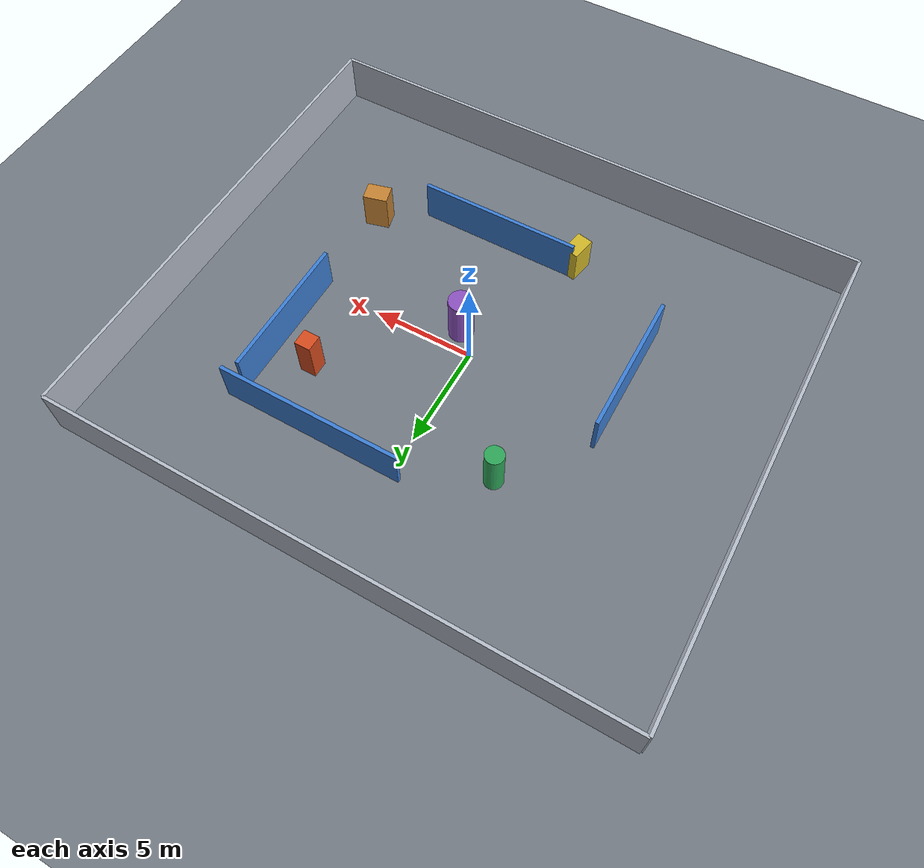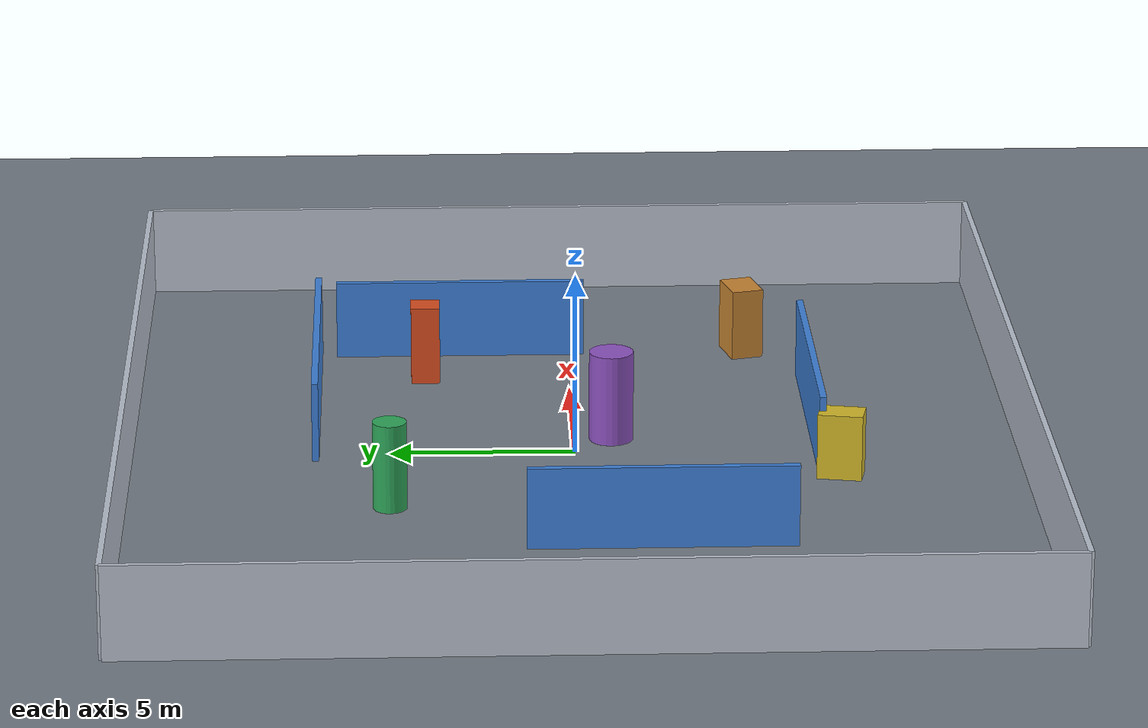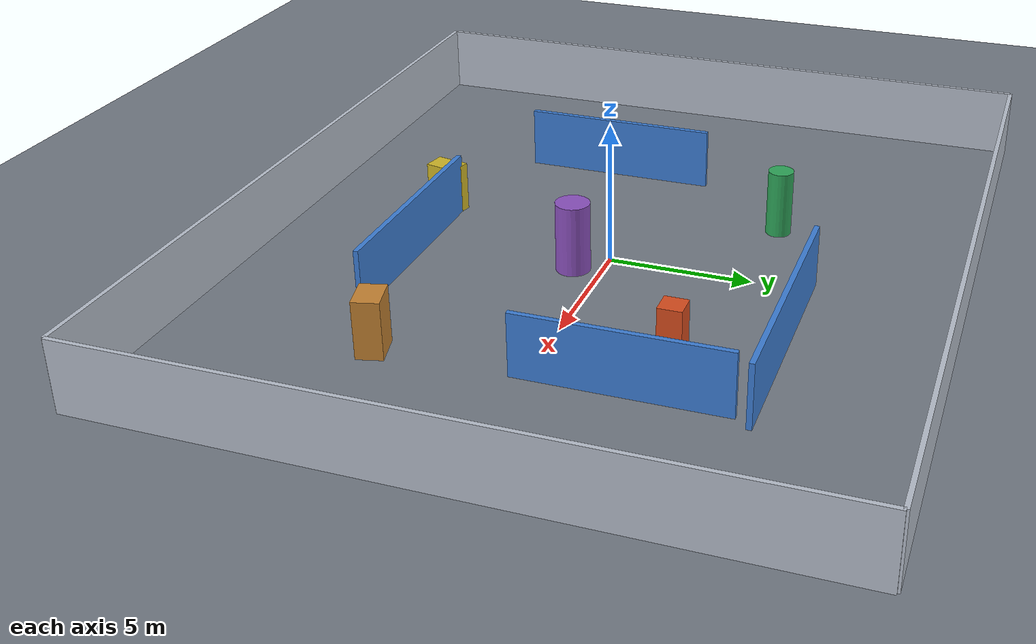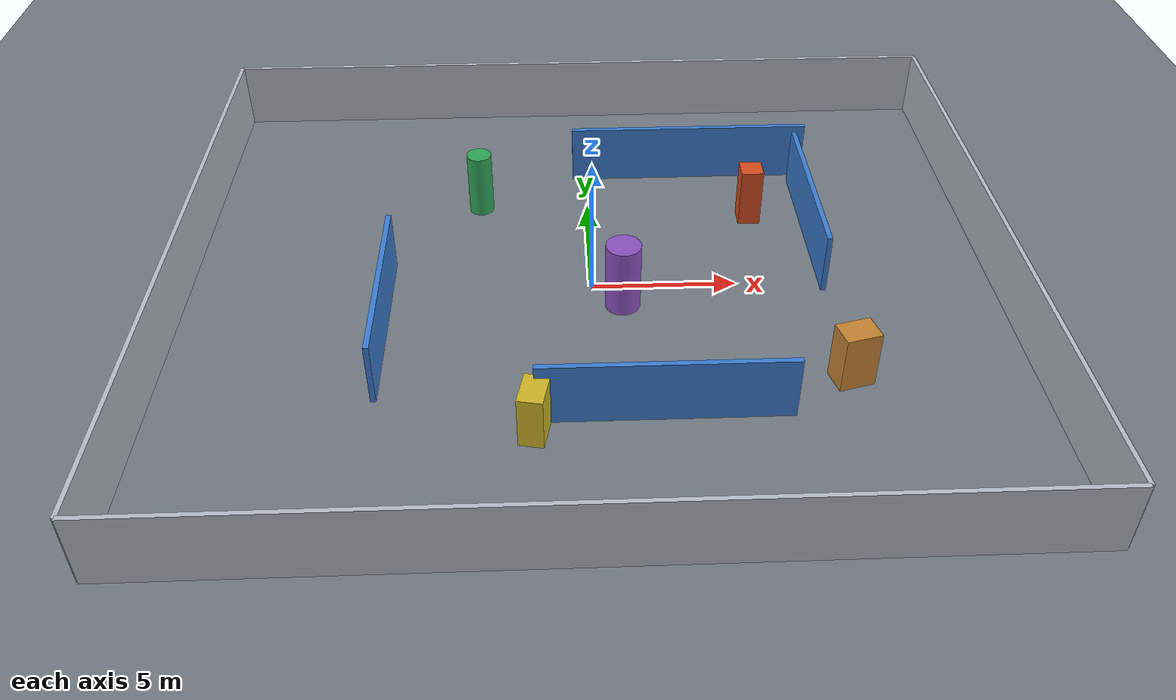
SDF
<?xml version="1.0"?>
<sdf version="1.9">
  <world name="patrol_test_world">
    <physics name="1ms" type="ignored">
      <max_step_size>0.001</max_step_size>
      <real_time_factor>1.0</real_time_factor>
    </physics>

    <plugin filename="gz-sim-physics-system"
            name="gz::sim::systems::Physics"/>
    <plugin filename="gz-sim-user-commands-system"
            name="gz::sim::systems::UserCommands"/>
    <plugin filename="gz-sim-scene-broadcaster-system"
            name="gz::sim::systems::SceneBroadcaster"/>
    <plugin filename="gz-sim-sensors-system"
            name="gz::sim::systems::Sensors">
      <render_engine>ogre2</render_engine>
    </plugin>

    <scene>
      <ambient>0.45 0.45 0.45 1</ambient>
      <background>0.70 0.80 0.92 1</background>
      <shadows>true</shadows>
    </scene>

    <light name="sun" type="directional">
      <cast_shadows>true</cast_shadows>
      <pose>0 0 10 0 0 0</pose>
      <diffuse>0.9 0.9 0.9 1</diffuse>
      <specular>0.2 0.2 0.2 1</specular>
      <direction>-0.5 0.2 -0.9</direction>
    </light>

    <model name="ground">
      <static>true</static>
      <link name="ground_link">
        <collision name="ground_collision">
          <geometry>
            <plane>
              <normal>0 0 1</normal>
              <size>36 32</size>
            </plane>
          </geometry>
          <surface>
            <friction>
              <ode>
                <mu>1.0</mu>
                <mu2>1.0</mu2>
              </ode>
            </friction>
          </surface>
        </collision>
        <visual name="ground_visual">
          <geometry>
            <plane>
              <normal>0 0 1</normal>
              <size>36 32</size>
            </plane>
          </geometry>
          <material>
            <ambient>0.35 0.38 0.42 1</ambient>
            <diffuse>0.45 0.48 0.52 1</diffuse>
          </material>
        </visual>
      </link>
    </model>

    <model name="inspection_box">
      <static>true</static>
      <pose>6.0 4.0 1.10 0 0 0</pose>
      <link name="link">
        <collision name="collision">
          <geometry>
            <box><size>0.8 0.8 2.2</size></box>
          </geometry>
        </collision>
        <visual name="visual">
          <geometry>
            <box><size>0.8 0.8 2.2</size></box>
          </geometry>
          <material>
            <ambient>0.75 0.25 0.10 1</ambient>
            <diffuse>0.85 0.30 0.12 1</diffuse>
          </material>
        </visual>
      </link>
    </model>

    <model name="inspection_tank">
      <static>true</static>
      <pose>-4.0 5.0 1.20 0 0 0</pose>
      <link name="link">
        <collision name="collision">
          <geometry>
            <cylinder><radius>0.45</radius><length>2.4</length></cylinder>
          </geometry>
        </collision>
        <visual name="visual">
          <geometry>
            <cylinder><radius>0.45</radius><length>2.4</length></cylinder>
          </geometry>
          <material>
            <ambient>0.15 0.55 0.30 1</ambient>
            <diffuse>0.18 0.65 0.35 1</diffuse>
          </material>
        </visual>
      </link>
    </model>

    <!-- Asymmetric perimeter walls give SLAM stable long-range features. -->
    <model name="north_wall">
      <static>true</static>
      <pose>0 12 1.25 0 0 0</pose>
      <link name="link">
        <collision name="collision">
          <geometry><box><size>28 0.15 2.5</size></box></geometry>
        </collision>
        <visual name="visual">
          <geometry><box><size>28 0.15 2.5</size></box></geometry>
          <material>
            <ambient>0.62 0.65 0.70 1</ambient>
            <diffuse>0.72 0.75 0.80 1</diffuse>
          </material>
        </visual>
      </link>
    </model>

    <model name="south_wall">
      <static>true</static>
      <pose>0 -12 1.25 0 0 0</pose>
      <link name="link">
        <collision name="collision">
          <geometry><box><size>28 0.15 2.5</size></box></geometry>
        </collision>
        <visual name="visual">
          <geometry><box><size>28 0.15 2.5</size></box></geometry>
          <material>
            <ambient>0.62 0.65 0.70 1</ambient>
            <diffuse>0.72 0.75 0.80 1</diffuse>
          </material>
        </visual>
      </link>
    </model>

    <model name="east_wall">
      <static>true</static>
      <pose>14 0 1.25 0 0 0</pose>
      <link name="link">
        <collision name="collision">
          <geometry><box><size>0.15 24 2.5</size></box></geometry>
        </collision>
        <visual name="visual">
          <geometry><box><size>0.15 24 2.5</size></box></geometry>
          <material>
            <ambient>0.62 0.65 0.70 1</ambient>
            <diffuse>0.72 0.75 0.80 1</diffuse>
          </material>
        </visual>
      </link>
    </model>

    <model name="west_wall">
      <static>true</static>
      <pose>-14 0 1.25 0 0 0</pose>
      <link name="link">
        <collision name="collision">
          <geometry><box><size>0.15 24 2.5</size></box></geometry>
        </collision>
        <visual name="visual">
          <geometry><box><size>0.15 24 2.5</size></box></geometry>
          <material>
            <ambient>0.62 0.65 0.70 1</ambient>
            <diffuse>0.72 0.75 0.80 1</diffuse>
          </material>
        </visual>
      </link>
    </model>

    <!-- Interior walls form wide, Ackermann-drivable passages. -->
    <model name="north_corridor_wall">
      <static>true</static>
      <pose>4.0 7.0 1.10 0 0 0</pose>
      <link name="link">
        <collision name="collision">
          <geometry><box><size>9.0 0.18 2.2</size></box></geometry>
        </collision>
        <visual name="visual">
          <geometry><box><size>9.0 0.18 2.2</size></box></geometry>
          <material>
            <ambient>0.20 0.42 0.72 1</ambient>
            <diffuse>0.24 0.50 0.84 1</diffuse>
          </material>
        </visual>
      </link>
    </model>

    <model name="west_corridor_wall">
      <static>true</static>
      <pose>-7.0 -2.0 1.10 0 0 0</pose>
      <link name="link">
        <collision name="collision">
          <geometry><box><size>0.18 7.0 2.2</size></box></geometry>
        </collision>
        <visual name="visual">
          <geometry><box><size>0.18 7.0 2.2</size></box></geometry>
          <material>
            <ambient>0.20 0.42 0.72 1</ambient>
            <diffuse>0.24 0.50 0.84 1</diffuse>
          </material>
        </visual>
      </link>
    </model>

    <model name="east_corridor_wall">
      <static>true</static>
      <pose>8.0 3.0 1.10 0 0 0</pose>
      <link name="link">
        <collision name="collision">
          <geometry><box><size>0.18 7.0 2.2</size></box></geometry>
        </collision>
        <visual name="visual">
          <geometry><box><size>0.18 7.0 2.2</size></box></geometry>
          <material>
            <ambient>0.20 0.42 0.72 1</ambient>
            <diffuse>0.24 0.50 0.84 1</diffuse>
          </material>
        </visual>
      </link>
    </model>

    <model name="south_corridor_wall">
      <static>true</static>
      <pose>2.0 -6.5 1.10 0 0 0</pose>
      <link name="link">
        <collision name="collision">
          <geometry><box><size>8.0 0.18 2.2</size></box></geometry>
        </collision>
        <visual name="visual">
          <geometry><box><size>8.0 0.18 2.2</size></box></geometry>
          <material>
            <ambient>0.20 0.42 0.72 1</ambient>
            <diffuse>0.24 0.50 0.84 1</diffuse>
          </material>
        </visual>
      </link>
    </model>

    <model name="central_tank">
      <static>true</static>
      <pose>1.0 -1.0 1.25 0 0 0</pose>
      <link name="link">
        <collision name="collision">
          <geometry>
            <cylinder><radius>0.60</radius><length>2.5</length></cylinder>
          </geometry>
        </collision>
        <visual name="visual">
          <geometry>
            <cylinder><radius>0.60</radius><length>2.5</length></cylinder>
          </geometry>
          <material>
            <ambient>0.45 0.25 0.65 1</ambient>
            <diffuse>0.55 0.32 0.75 1</diffuse>
          </material>
        </visual>
      </link>
    </model>

    <model name="pallet_stack">
      <static>true</static>
      <pose>8.0 -5.0 1.00 0 0 0.25</pose>
      <link name="link">
        <collision name="collision">
          <geometry><box><size>1.2 0.9 2.0</size></box></geometry>
        </collision>
        <visual name="visual">
          <geometry><box><size>1.2 0.9 2.0</size></box></geometry>
          <material>
            <ambient>0.68 0.45 0.16 1</ambient>
            <diffuse>0.78 0.52 0.20 1</diffuse>
          </material>
        </visual>
      </link>
    </model>

    <model name="low_crate">
      <static>true</static>
      <pose>-2.0 -7.0 0.90 0 0 -0.2</pose>
      <link name="link">
        <collision name="collision">
          <geometry><box><size>0.8 1.2 1.8</size></box></geometry>
        </collision>
        <visual name="visual">
          <geometry><box><size>0.8 1.2 1.8</size></box></geometry>
          <material>
            <ambient>0.72 0.62 0.12 1</ambient>
            <diffuse>0.82 0.72 0.16 1</diffuse>
          </material>
        </visual>
      </link>
    </model>
  </world>
</sdf>
